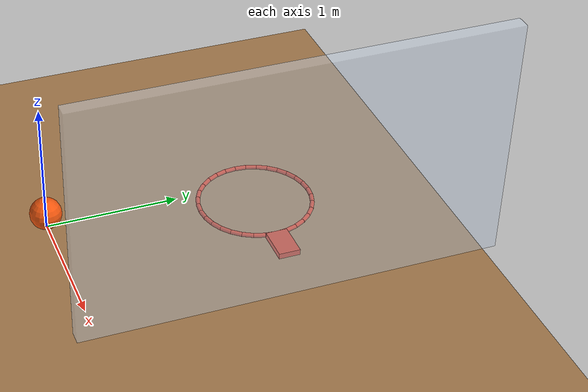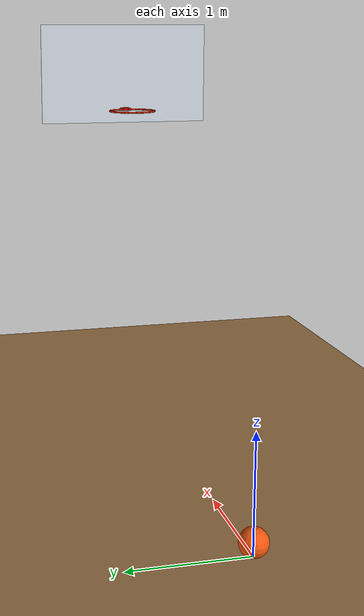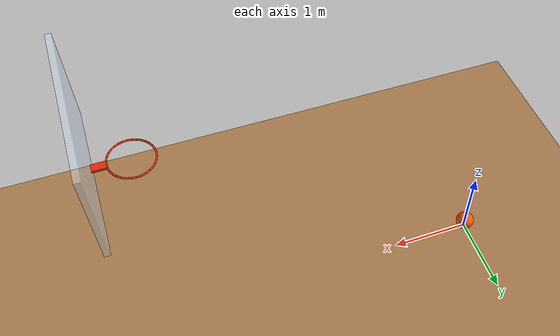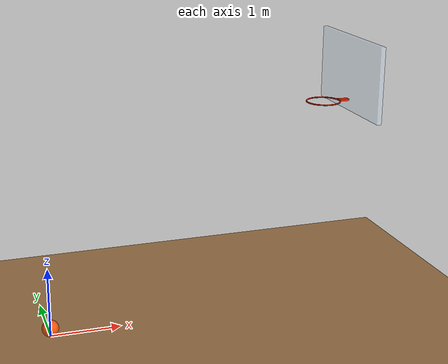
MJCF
<mujoco model="basketball_shot">
  <compiler angle="radian"/>
  <option timestep="0.002" gravity="0 0 -9.81" integrator="RK4"/>

  <visual>
    <global azimuth="135" elevation="-20"/>
    <rgba haze="0.85 0.9 0.95 1"/>
  </visual>

  <worldbody>
    <light name="overhead" pos="2 -3 8" dir="0 0 -1" diffuse="0.9 0.9 0.9"/>
    <camera name="shot_view" pos="2 -9 4" xyaxes="1 0 0 0 0.1644 0.9864"/>

    <geom name="floor" type="plane" pos="0 0 0" size="12 8 0.1" rgba="0.65 0.48 0.3 1" friction="0.7 0.005 0.0001" solref="0.012 1"/>

    <body name="hoop" pos="4 0 3.05">
      <geom name="rim_00" type="capsule" fromto="0.237600 0 0 0.233035 0.046353 0" size="0.009" rgba="0.9 0.16 0.04 1"/>
      <geom name="rim_01" type="capsule" fromto="0.233035 0.046353 0 0.219514 0.090926 0" size="0.009" rgba="0.9 0.16 0.04 1"/>
      <geom name="rim_02" type="capsule" fromto="0.219514 0.090926 0 0.197558 0.132003 0" size="0.009" rgba="0.9 0.16 0.04 1"/>
      <geom name="rim_03" type="capsule" fromto="0.197558 0.132003 0 0.168009 0.168009 0" size="0.009" rgba="0.9 0.16 0.04 1"/>
      <geom name="rim_04" type="capsule" fromto="0.168009 0.168009 0 0.132003 0.197558 0" size="0.009" rgba="0.9 0.16 0.04 1"/>
      <geom name="rim_05" type="capsule" fromto="0.132003 0.197558 0 0.090926 0.219514 0" size="0.009" rgba="0.9 0.16 0.04 1"/>
      <geom name="rim_06" type="capsule" fromto="0.090926 0.219514 0 0.046353 0.233035 0" size="0.009" rgba="0.9 0.16 0.04 1"/>
      <geom name="rim_07" type="capsule" fromto="0.046353 0.233035 0 0 0.237600 0" size="0.009" rgba="0.9 0.16 0.04 1"/>
      <geom name="rim_08" type="capsule" fromto="0 0.237600 0 -0.046353 0.233035 0" size="0.009" rgba="0.9 0.16 0.04 1"/>
      <geom name="rim_09" type="capsule" fromto="-0.046353 0.233035 0 -0.090926 0.219514 0" size="0.009" rgba="0.9 0.16 0.04 1"/>
      <geom name="rim_10" type="capsule" fromto="-0.090926 0.219514 0 -0.132003 0.197558 0" size="0.009" rgba="0.9 0.16 0.04 1"/>
      <geom name="rim_11" type="capsule" fromto="-0.132003 0.197558 0 -0.168009 0.168009 0" size="0.009" rgba="0.9 0.16 0.04 1"/>
      <geom name="rim_12" type="capsule" fromto="-0.168009 0.168009 0 -0.197558 0.132003 0" size="0.009" rgba="0.9 0.16 0.04 1"/>
      <geom name="rim_13" type="capsule" fromto="-0.197558 0.132003 0 -0.219514 0.090926 0" size="0.009" rgba="0.9 0.16 0.04 1"/>
      <geom name="rim_14" type="capsule" fromto="-0.219514 0.090926 0 -0.233035 0.046353 0" size="0.009" rgba="0.9 0.16 0.04 1"/>
      <geom name="rim_15" type="capsule" fromto="-0.233035 0.046353 0 -0.237600 0 0" size="0.009" rgba="0.9 0.16 0.04 1"/>
      <geom name="rim_16" type="capsule" fromto="-0.237600 0 0 -0.233035 -0.046353 0" size="0.009" rgba="0.9 0.16 0.04 1"/>
      <geom name="rim_17" type="capsule" fromto="-0.233035 -0.046353 0 -0.219514 -0.090926 0" size="0.009" rgba="0.9 0.16 0.04 1"/>
      <geom name="rim_18" type="capsule" fromto="-0.219514 -0.090926 0 -0.197558 -0.132003 0" size="0.009" rgba="0.9 0.16 0.04 1"/>
      <geom name="rim_19" type="capsule" fromto="-0.197558 -0.132003 0 -0.168009 -0.168009 0" size="0.009" rgba="0.9 0.16 0.04 1"/>
      <geom name="rim_20" type="capsule" fromto="-0.168009 -0.168009 0 -0.132003 -0.197558 0" size="0.009" rgba="0.9 0.16 0.04 1"/>
      <geom name="rim_21" type="capsule" fromto="-0.132003 -0.197558 0 -0.090926 -0.219514 0" size="0.009" rgba="0.9 0.16 0.04 1"/>
      <geom name="rim_22" type="capsule" fromto="-0.090926 -0.219514 0 -0.046353 -0.233035 0" size="0.009" rgba="0.9 0.16 0.04 1"/>
      <geom name="rim_23" type="capsule" fromto="-0.046353 -0.233035 0 0 -0.237600 0" size="0.009" rgba="0.9 0.16 0.04 1"/>
      <geom name="rim_24" type="capsule" fromto="0 -0.237600 0 0.046353 -0.233035 0" size="0.009" rgba="0.9 0.16 0.04 1"/>
      <geom name="rim_25" type="capsule" fromto="0.046353 -0.233035 0 0.090926 -0.219514 0" size="0.009" rgba="0.9 0.16 0.04 1"/>
      <geom name="rim_26" type="capsule" fromto="0.090926 -0.219514 0 0.132003 -0.197558 0" size="0.009" rgba="0.9 0.16 0.04 1"/>
      <geom name="rim_27" type="capsule" fromto="0.132003 -0.197558 0 0.168009 -0.168009 0" size="0.009" rgba="0.9 0.16 0.04 1"/>
      <geom name="rim_28" type="capsule" fromto="0.168009 -0.168009 0 0.197558 -0.132003 0" size="0.009" rgba="0.9 0.16 0.04 1"/>
      <geom name="rim_29" type="capsule" fromto="0.197558 -0.132003 0 0.219514 -0.090926 0" size="0.009" rgba="0.9 0.16 0.04 1"/>
      <geom name="rim_30" type="capsule" fromto="0.219514 -0.090926 0 0.233035 -0.046353 0" size="0.009" rgba="0.9 0.16 0.04 1"/>
      <geom name="rim_31" type="capsule" fromto="0.233035 -0.046353 0 0.237600 0 0" size="0.009" rgba="0.9 0.16 0.04 1"/>
      <geom name="hoop_mount" type="box" pos="0.309 0 0" size="0.072 0.045 0.012" rgba="0.9 0.16 0.04 1"/>
    </body>

    <body name="backboard" pos="4.411 0 3.425">
      <geom name="backboard" type="box" size="0.03 0.9 0.525" rgba="0.85 0.92 1 0.45"/>
    </body>

    <body name="ball" pos="0 0 0.12">
      <freejoint/>
      <geom name="ball" type="sphere" size="0.12" mass="0.624" rgba="0.95 0.34 0.055 1" friction="0.7 0.005 0.0001" solref="0.012 1" solimp="0.95 0.99 0.001"/>
    </body>
  </worldbody>

  <keyframe>
    <key name="start" time="0" qpos="0 0 0.12 1 0 0 0" qvel="3 0 8.7375 0 -12 0"/>
  </keyframe>
</mujoco>
